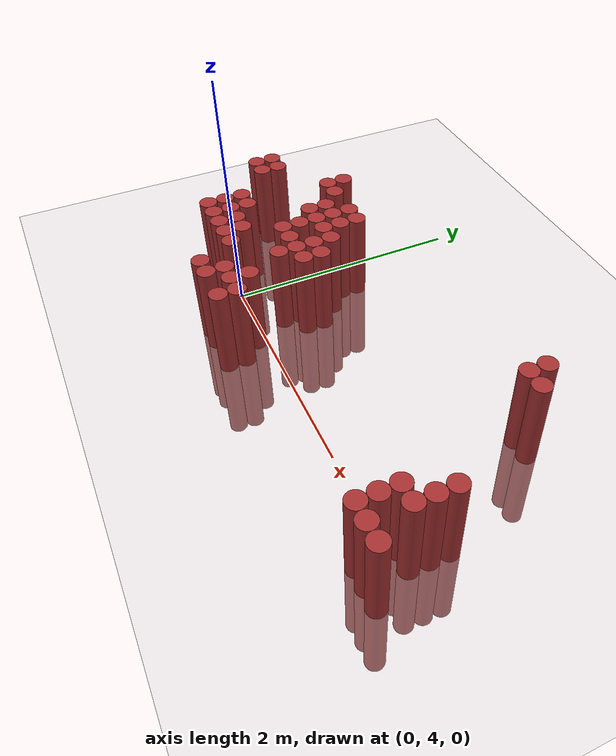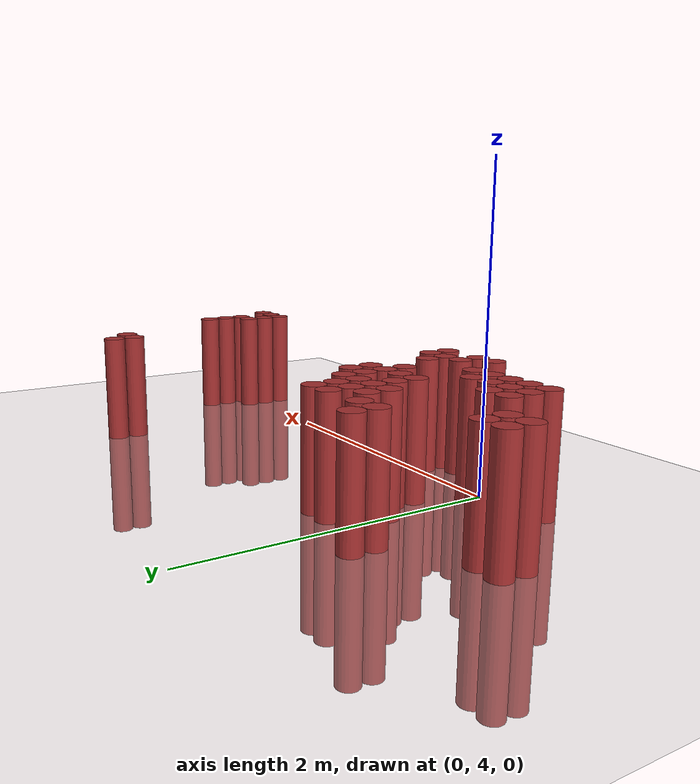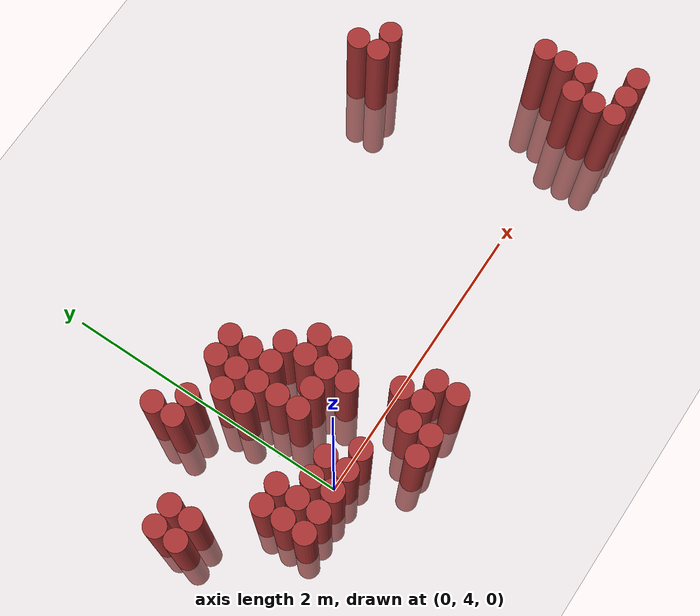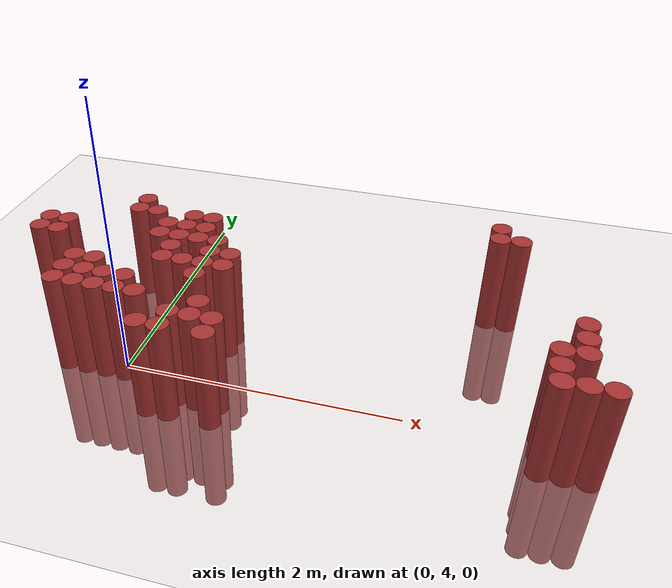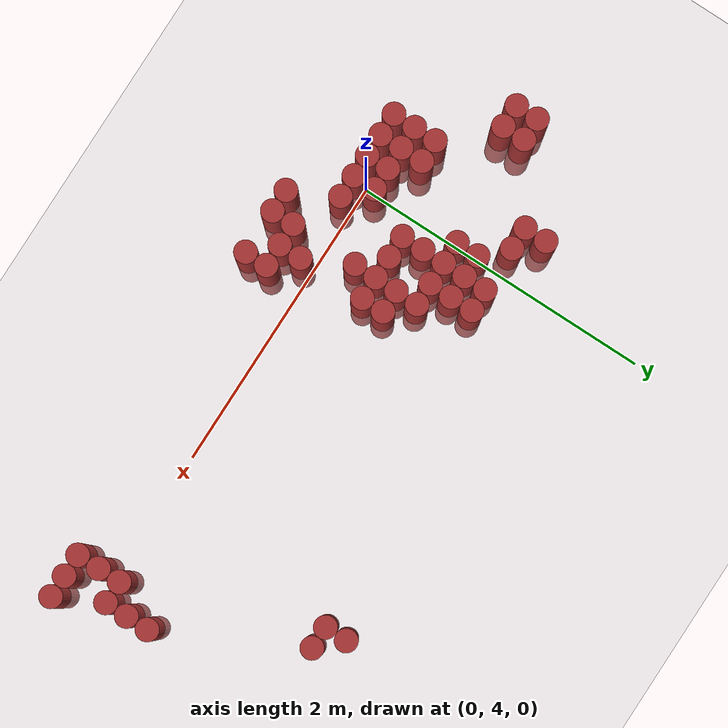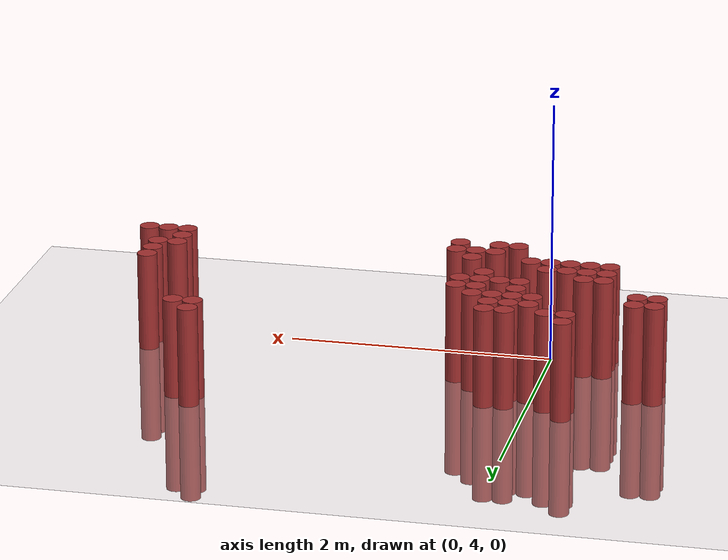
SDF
<sdf version="1.6">
 <world name="default">
  <model name="ground_plane">
   <static>1</static>
   <link name="link">
    <collision name="collision">
     <geometry><plane><normal>0 0 1</normal><size>100 100</size></plane></geometry>
     <surface><friction><ode><mu>100</mu><mu2>50</mu2></ode></friction></surface>
    </collision>
    <visual name="visual">
     <cast_shadows>0</cast_shadows>
     <geometry><plane><normal>0 0 1</normal><size>100 100</size></plane></geometry>
     <material>
      <script><uri>file://media/materials/scripts/gazebo.material</uri><name>Gazebo/Grey</name></script>
     </material>
    </visual>
   </link>
  </model>
  <model name="unit_cylinder_424">
   <static>1</static>
   <pose>-0.875000 4.525000 0.000000 0.000000 0.000000 0.000000</pose>
   <link name="link">
    <inertial>
     <mass>1</mass>
     <inertia><ixx>0.145833</ixx><ixy>0</ixy><ixz>0</ixz><iyy>0.145833</iyy><iyz>0</iyz><izz>0.125</izz></inertia>
    </inertial>
    <collision name="collision">
     <geometry><cylinder><radius>0.075000</radius><length>1.5</length></cylinder></geometry>
    </collision>
    <visual name="visual">
     <geometry><cylinder><radius>0.075000</radius><length>1.5</length></cylinder></geometry>
     <material>
      <ambient>0.648000 0.192000 0.192000 1</ambient>
      <diffuse>0.648000 0.192000 0.192000 1</diffuse>
     </material>
     <material>
      <script><name>Gazebo/Grey</name><uri>file://media/materials/scripts/gazebo.material</uri></script>
     </material>
    </visual>
   </link>
  </model>
  <model name="unit_cylinder_425">
   <static>1</static>
   <pose>-0.875000 4.675000 0.000000 0.000000 0.000000 0.000000</pose>
   <link name="link">
    <inertial>
     <mass>1</mass>
     <inertia><ixx>0.145833</ixx><ixy>0</ixy><ixz>0</ixz><iyy>0.145833</iyy><iyz>0</iyz><izz>0.125</izz></inertia>
    </inertial>
    <collision name="collision">
     <geometry><cylinder><radius>0.075000</radius><length>1.5</length></cylinder></geometry>
    </collision>
    <visual name="visual">
     <geometry><cylinder><radius>0.075000</radius><length>1.5</length></cylinder></geometry>
     <material>
      <ambient>0.648000 0.192000 0.192000 1</ambient>
      <diffuse>0.648000 0.192000 0.192000 1</diffuse>
     </material>
     <material>
      <script><name>Gazebo/Grey</name><uri>file://media/materials/scripts/gazebo.material</uri></script>
     </material>
    </visual>
   </link>
  </model>
  <model name="unit_cylinder_430">
   <static>1</static>
   <pose>-0.725000 4.525000 0.000000 0.000000 0.000000 0.000000</pose>
   <link name="link">
    <inertial>
     <mass>1</mass>
     <inertia><ixx>0.145833</ixx><ixy>0</ixy><ixz>0</ixz><iyy>0.145833</iyy><iyz>0</iyz><izz>0.125</izz></inertia>
    </inertial>
    <collision name="collision">
     <geometry><cylinder><radius>0.075000</radius><length>1.5</length></cylinder></geometry>
    </collision>
    <visual name="visual">
     <geometry><cylinder><radius>0.075000</radius><length>1.5</length></cylinder></geometry>
     <material>
      <ambient>0.648000 0.192000 0.192000 1</ambient>
      <diffuse>0.648000 0.192000 0.192000 1</diffuse>
     </material>
     <material>
      <script><name>Gazebo/Grey</name><uri>file://media/materials/scripts/gazebo.material</uri></script>
     </material>
    </visual>
   </link>
  </model>
  <model name="unit_cylinder_431">
   <static>1</static>
   <pose>-0.725000 4.675000 0.000000 0.000000 0.000000 0.000000</pose>
   <link name="link">
    <inertial>
     <mass>1</mass>
     <inertia><ixx>0.145833</ixx><ixy>0</ixy><ixz>0</ixz><iyy>0.145833</iyy><iyz>0</iyz><izz>0.125</izz></inertia>
    </inertial>
    <collision name="collision">
     <geometry><cylinder><radius>0.075000</radius><length>1.5</length></cylinder></geometry>
    </collision>
    <visual name="visual">
     <geometry><cylinder><radius>0.075000</radius><length>1.5</length></cylinder></geometry>
     <material>
      <ambient>0.648000 0.192000 0.192000 1</ambient>
      <diffuse>0.648000 0.192000 0.192000 1</diffuse>
     </material>
     <material>
      <script><name>Gazebo/Grey</name><uri>file://media/materials/scripts/gazebo.material</uri></script>
     </material>
    </visual>
   </link>
  </model>
  <model name="unit_cylinder_453">
   <static>1</static>
   <pose>-0.425000 3.925000 0.000000 0.000000 0.000000 0.000000</pose>
   <link name="link">
    <inertial>
     <mass>1</mass>
     <inertia><ixx>0.145833</ixx><ixy>0</ixy><ixz>0</ixz><iyy>0.145833</iyy><iyz>0</iyz><izz>0.125</izz></inertia>
    </inertial>
    <collision name="collision">
     <geometry><cylinder><radius>0.075000</radius><length>1.5</length></cylinder></geometry>
    </collision>
    <visual name="visual">
     <geometry><cylinder><radius>0.075000</radius><length>1.5</length></cylinder></geometry>
     <material>
      <ambient>0.648000 0.192000 0.192000 1</ambient>
      <diffuse>0.648000 0.192000 0.192000 1</diffuse>
     </material>
     <material>
      <script><name>Gazebo/Grey</name><uri>file://media/materials/scripts/gazebo.material</uri></script>
     </material>
    </visual>
   </link>
  </model>
  <model name="unit_cylinder_454">
   <static>1</static>
   <pose>-0.425000 4.075000 0.000000 0.000000 0.000000 0.000000</pose>
   <link name="link">
    <inertial>
     <mass>1</mass>
     <inertia><ixx>0.145833</ixx><ixy>0</ixy><ixz>0</ixz><iyy>0.145833</iyy><iyz>0</iyz><izz>0.125</izz></inertia>
    </inertial>
    <collision name="collision">
     <geometry><cylinder><radius>0.075000</radius><length>1.5</length></cylinder></geometry>
    </collision>
    <visual name="visual">
     <geometry><cylinder><radius>0.075000</radius><length>1.5</length></cylinder></geometry>
     <material>
      <ambient>0.648000 0.192000 0.192000 1</ambient>
      <diffuse>0.648000 0.192000 0.192000 1</diffuse>
     </material>
     <material>
      <script><name>Gazebo/Grey</name><uri>file://media/materials/scripts/gazebo.material</uri></script>
     </material>
    </visual>
   </link>
  </model>
  <model name="unit_cylinder_455">
   <static>1</static>
   <pose>-0.425000 4.225000 0.000000 0.000000 0.000000 0.000000</pose>
   <link name="link">
    <inertial>
     <mass>1</mass>
     <inertia><ixx>0.145833</ixx><ixy>0</ixy><ixz>0</ixz><iyy>0.145833</iyy><iyz>0</iyz><izz>0.125</izz></inertia>
    </inertial>
    <collision name="collision">
     <geometry><cylinder><radius>0.075000</radius><length>1.5</length></cylinder></geometry>
    </collision>
    <visual name="visual">
     <geometry><cylinder><radius>0.075000</radius><length>1.5</length></cylinder></geometry>
     <material>
      <ambient>0.648000 0.192000 0.192000 1</ambient>
      <diffuse>0.648000 0.192000 0.192000 1</diffuse>
     </material>
     <material>
      <script><name>Gazebo/Grey</name><uri>file://media/materials/scripts/gazebo.material</uri></script>
     </material>
    </visual>
   </link>
  </model>
  <model name="unit_cylinder_468">
   <static>1</static>
   <pose>-0.275000 3.925000 0.000000 0.000000 0.000000 0.000000</pose>
   <link name="link">
    <inertial>
     <mass>1</mass>
     <inertia><ixx>0.145833</ixx><ixy>0</ixy><ixz>0</ixz><iyy>0.145833</iyy><iyz>0</iyz><izz>0.125</izz></inertia>
    </inertial>
    <collision name="collision">
     <geometry><cylinder><radius>0.075000</radius><length>1.5</length></cylinder></geometry>
    </collision>
    <visual name="visual">
     <geometry><cylinder><radius>0.075000</radius><length>1.5</length></cylinder></geometry>
     <material>
      <ambient>0.648000 0.192000 0.192000 1</ambient>
      <diffuse>0.648000 0.192000 0.192000 1</diffuse>
     </material>
     <material>
      <script><name>Gazebo/Grey</name><uri>file://media/materials/scripts/gazebo.material</uri></script>
     </material>
    </visual>
   </link>
  </model>
  <model name="unit_cylinder_469">
   <static>1</static>
   <pose>-0.275000 4.075000 0.000000 0.000000 0.000000 0.000000</pose>
   <link name="link">
    <inertial>
     <mass>1</mass>
     <inertia><ixx>0.145833</ixx><ixy>0</ixy><ixz>0</ixz><iyy>0.145833</iyy><iyz>0</iyz><izz>0.125</izz></inertia>
    </inertial>
    <collision name="collision">
     <geometry><cylinder><radius>0.075000</radius><length>1.5</length></cylinder></geometry>
    </collision>
    <visual name="visual">
     <geometry><cylinder><radius>0.075000</radius><length>1.5</length></cylinder></geometry>
     <material>
      <ambient>0.648000 0.192000 0.192000 1</ambient>
      <diffuse>0.648000 0.192000 0.192000 1</diffuse>
     </material>
     <material>
      <script><name>Gazebo/Grey</name><uri>file://media/materials/scripts/gazebo.material</uri></script>
     </material>
    </visual>
   </link>
  </model>
  <model name="unit_cylinder_470">
   <static>1</static>
   <pose>-0.275000 4.225000 0.000000 0.000000 0.000000 0.000000</pose>
   <link name="link">
    <inertial>
     <mass>1</mass>
     <inertia><ixx>0.145833</ixx><ixy>0</ixy><ixz>0</ixz><iyy>0.145833</iyy><iyz>0</iyz><izz>0.125</izz></inertia>
    </inertial>
    <collision name="collision">
     <geometry><cylinder><radius>0.075000</radius><length>1.5</length></cylinder></geometry>
    </collision>
    <visual name="visual">
     <geometry><cylinder><radius>0.075000</radius><length>1.5</length></cylinder></geometry>
     <material>
      <ambient>0.648000 0.192000 0.192000 1</ambient>
      <diffuse>0.648000 0.192000 0.192000 1</diffuse>
     </material>
     <material>
      <script><name>Gazebo/Grey</name><uri>file://media/materials/scripts/gazebo.material</uri></script>
     </material>
    </visual>
   </link>
  </model>
  <model name="unit_cylinder_471">
   <static>1</static>
   <pose>-0.275000 4.975000 0.000000 0.000000 0.000000 0.000000</pose>
   <link name="link">
    <inertial>
     <mass>1</mass>
     <inertia><ixx>0.145833</ixx><ixy>0</ixy><ixz>0</ixz><iyy>0.145833</iyy><iyz>0</iyz><izz>0.125</izz></inertia>
    </inertial>
    <collision name="collision">
     <geometry><cylinder><radius>0.075000</radius><length>1.5</length></cylinder></geometry>
    </collision>
    <visual name="visual">
     <geometry><cylinder><radius>0.075000</radius><length>1.5</length></cylinder></geometry>
     <material>
      <ambient>0.648000 0.192000 0.192000 1</ambient>
      <diffuse>0.648000 0.192000 0.192000 1</diffuse>
     </material>
     <material>
      <script><name>Gazebo/Grey</name><uri>file://media/materials/scripts/gazebo.material</uri></script>
     </material>
    </visual>
   </link>
  </model>
  <model name="unit_cylinder_472">
   <static>1</static>
   <pose>-0.275000 5.125000 0.000000 0.000000 0.000000 0.000000</pose>
   <link name="link">
    <inertial>
     <mass>1</mass>
     <inertia><ixx>0.145833</ixx><ixy>0</ixy><ixz>0</ixz><iyy>0.145833</iyy><iyz>0</iyz><izz>0.125</izz></inertia>
    </inertial>
    <collision name="collision">
     <geometry><cylinder><radius>0.075000</radius><length>1.5</length></cylinder></geometry>
    </collision>
    <visual name="visual">
     <geometry><cylinder><radius>0.075000</radius><length>1.5</length></cylinder></geometry>
     <material>
      <ambient>0.648000 0.192000 0.192000 1</ambient>
      <diffuse>0.648000 0.192000 0.192000 1</diffuse>
     </material>
     <material>
      <script><name>Gazebo/Grey</name><uri>file://media/materials/scripts/gazebo.material</uri></script>
     </material>
    </visual>
   </link>
  </model>
  <model name="unit_cylinder_479">
   <static>1</static>
   <pose>-0.125000 3.925000 0.000000 0.000000 0.000000 0.000000</pose>
   <link name="link">
    <inertial>
     <mass>1</mass>
     <inertia><ixx>0.145833</ixx><ixy>0</ixy><ixz>0</ixz><iyy>0.145833</iyy><iyz>0</iyz><izz>0.125</izz></inertia>
    </inertial>
    <collision name="collision">
     <geometry><cylinder><radius>0.075000</radius><length>1.5</length></cylinder></geometry>
    </collision>
    <visual name="visual">
     <geometry><cylinder><radius>0.075000</radius><length>1.5</length></cylinder></geometry>
     <material>
      <ambient>0.648000 0.192000 0.192000 1</ambient>
      <diffuse>0.648000 0.192000 0.192000 1</diffuse>
     </material>
     <material>
      <script><name>Gazebo/Grey</name><uri>file://media/materials/scripts/gazebo.material</uri></script>
     </material>
    </visual>
   </link>
  </model>
  <model name="unit_cylinder_480">
   <static>1</static>
   <pose>-0.125000 4.075000 0.000000 0.000000 0.000000 0.000000</pose>
   <link name="link">
    <inertial>
     <mass>1</mass>
     <inertia><ixx>0.145833</ixx><ixy>0</ixy><ixz>0</ixz><iyy>0.145833</iyy><iyz>0</iyz><izz>0.125</izz></inertia>
    </inertial>
    <collision name="collision">
     <geometry><cylinder><radius>0.075000</radius><length>1.5</length></cylinder></geometry>
    </collision>
    <visual name="visual">
     <geometry><cylinder><radius>0.075000</radius><length>1.5</length></cylinder></geometry>
     <material>
      <ambient>0.648000 0.192000 0.192000 1</ambient>
      <diffuse>0.648000 0.192000 0.192000 1</diffuse>
     </material>
     <material>
      <script><name>Gazebo/Grey</name><uri>file://media/materials/scripts/gazebo.material</uri></script>
     </material>
    </visual>
   </link>
  </model>
  <model name="unit_cylinder_481">
   <static>1</static>
   <pose>-0.125000 4.975000 0.000000 0.000000 0.000000 0.000000</pose>
   <link name="link">
    <inertial>
     <mass>1</mass>
     <inertia><ixx>0.145833</ixx><ixy>0</ixy><ixz>0</ixz><iyy>0.145833</iyy><iyz>0</iyz><izz>0.125</izz></inertia>
    </inertial>
    <collision name="collision">
     <geometry><cylinder><radius>0.075000</radius><length>1.5</length></cylinder></geometry>
    </collision>
    <visual name="visual">
     <geometry><cylinder><radius>0.075000</radius><length>1.5</length></cylinder></geometry>
     <material>
      <ambient>0.648000 0.192000 0.192000 1</ambient>
      <diffuse>0.648000 0.192000 0.192000 1</diffuse>
     </material>
     <material>
      <script><name>Gazebo/Grey</name><uri>file://media/materials/scripts/gazebo.material</uri></script>
     </material>
    </visual>
   </link>
  </model>
  <model name="unit_cylinder_488">
   <static>1</static>
   <pose>0.025000 3.925000 0.000000 0.000000 0.000000 0.000000</pose>
   <link name="link">
    <inertial>
     <mass>1</mass>
     <inertia><ixx>0.145833</ixx><ixy>0</ixy><ixz>0</ixz><iyy>0.145833</iyy><iyz>0</iyz><izz>0.125</izz></inertia>
    </inertial>
    <collision name="collision">
     <geometry><cylinder><radius>0.075000</radius><length>1.5</length></cylinder></geometry>
    </collision>
    <visual name="visual">
     <geometry><cylinder><radius>0.075000</radius><length>1.5</length></cylinder></geometry>
     <material>
      <ambient>0.648000 0.192000 0.192000 1</ambient>
      <diffuse>0.648000 0.192000 0.192000 1</diffuse>
     </material>
     <material>
      <script><name>Gazebo/Grey</name><uri>file://media/materials/scripts/gazebo.material</uri></script>
     </material>
    </visual>
   </link>
  </model>
  <model name="unit_cylinder_489">
   <static>1</static>
   <pose>0.025000 4.075000 0.000000 0.000000 0.000000 0.000000</pose>
   <link name="link">
    <inertial>
     <mass>1</mass>
     <inertia><ixx>0.145833</ixx><ixy>0</ixy><ixz>0</ixz><iyy>0.145833</iyy><iyz>0</iyz><izz>0.125</izz></inertia>
    </inertial>
    <collision name="collision">
     <geometry><cylinder><radius>0.075000</radius><length>1.5</length></cylinder></geometry>
    </collision>
    <visual name="visual">
     <geometry><cylinder><radius>0.075000</radius><length>1.5</length></cylinder></geometry>
     <material>
      <ambient>0.648000 0.192000 0.192000 1</ambient>
      <diffuse>0.648000 0.192000 0.192000 1</diffuse>
     </material>
     <material>
      <script><name>Gazebo/Grey</name><uri>file://media/materials/scripts/gazebo.material</uri></script>
     </material>
    </visual>
   </link>
  </model>
  <model name="unit_cylinder_490">
   <static>1</static>
   <pose>0.025000 4.675000 0.000000 0.000000 0.000000 0.000000</pose>
   <link name="link">
    <inertial>
     <mass>1</mass>
     <inertia><ixx>0.145833</ixx><ixy>0</ixy><ixz>0</ixz><iyy>0.145833</iyy><iyz>0</iyz><izz>0.125</izz></inertia>
    </inertial>
    <collision name="collision">
     <geometry><cylinder><radius>0.075000</radius><length>1.5</length></cylinder></geometry>
    </collision>
    <visual name="visual">
     <geometry><cylinder><radius>0.075000</radius><length>1.5</length></cylinder></geometry>
     <material>
      <ambient>0.648000 0.192000 0.192000 1</ambient>
      <diffuse>0.648000 0.192000 0.192000 1</diffuse>
     </material>
     <material>
      <script><name>Gazebo/Grey</name><uri>file://media/materials/scripts/gazebo.material</uri></script>
     </material>
    </visual>
   </link>
  </model>
  <model name="unit_cylinder_491">
   <static>1</static>
   <pose>0.025000 4.825000 0.000000 0.000000 0.000000 0.000000</pose>
   <link name="link">
    <inertial>
     <mass>1</mass>
     <inertia><ixx>0.145833</ixx><ixy>0</ixy><ixz>0</ixz><iyy>0.145833</iyy><iyz>0</iyz><izz>0.125</izz></inertia>
    </inertial>
    <collision name="collision">
     <geometry><cylinder><radius>0.075000</radius><length>1.5</length></cylinder></geometry>
    </collision>
    <visual name="visual">
     <geometry><cylinder><radius>0.075000</radius><length>1.5</length></cylinder></geometry>
     <material>
      <ambient>0.648000 0.192000 0.192000 1</ambient>
      <diffuse>0.648000 0.192000 0.192000 1</diffuse>
     </material>
     <material>
      <script><name>Gazebo/Grey</name><uri>file://media/materials/scripts/gazebo.material</uri></script>
     </material>
    </visual>
   </link>
  </model>
  <model name="unit_cylinder_496">
   <static>1</static>
   <pose>0.175000 3.925000 0.000000 0.000000 0.000000 0.000000</pose>
   <link name="link">
    <inertial>
     <mass>1</mass>
     <inertia><ixx>0.145833</ixx><ixy>0</ixy><ixz>0</ixz><iyy>0.145833</iyy><iyz>0</iyz><izz>0.125</izz></inertia>
    </inertial>
    <collision name="collision">
     <geometry><cylinder><radius>0.075000</radius><length>1.5</length></cylinder></geometry>
    </collision>
    <visual name="visual">
     <geometry><cylinder><radius>0.075000</radius><length>1.5</length></cylinder></geometry>
     <material>
      <ambient>0.648000 0.192000 0.192000 1</ambient>
      <diffuse>0.648000 0.192000 0.192000 1</diffuse>
     </material>
     <material>
      <script><name>Gazebo/Grey</name><uri>file://media/materials/scripts/gazebo.material</uri></script>
     </material>
    </visual>
   </link>
  </model>
  <model name="unit_cylinder_497">
   <static>1</static>
   <pose>0.175000 4.375000 0.000000 0.000000 0.000000 0.000000</pose>
   <link name="link">
    <inertial>
     <mass>1</mass>
     <inertia><ixx>0.145833</ixx><ixy>0</ixy><ixz>0</ixz><iyy>0.145833</iyy><iyz>0</iyz><izz>0.125</izz></inertia>
    </inertial>
    <collision name="collision">
     <geometry><cylinder><radius>0.075000</radius><length>1.5</length></cylinder></geometry>
    </collision>
    <visual name="visual">
     <geometry><cylinder><radius>0.075000</radius><length>1.5</length></cylinder></geometry>
     <material>
      <ambient>0.648000 0.192000 0.192000 1</ambient>
      <diffuse>0.648000 0.192000 0.192000 1</diffuse>
     </material>
     <material>
      <script><name>Gazebo/Grey</name><uri>file://media/materials/scripts/gazebo.material</uri></script>
     </material>
    </visual>
   </link>
  </model>
  <model name="unit_cylinder_498">
   <static>1</static>
   <pose>0.175000 4.525000 0.000000 0.000000 0.000000 0.000000</pose>
   <link name="link">
    <inertial>
     <mass>1</mass>
     <inertia><ixx>0.145833</ixx><ixy>0</ixy><ixz>0</ixz><iyy>0.145833</iyy><iyz>0</iyz><izz>0.125</izz></inertia>
    </inertial>
    <collision name="collision">
     <geometry><cylinder><radius>0.075000</radius><length>1.5</length></cylinder></geometry>
    </collision>
    <visual name="visual">
     <geometry><cylinder><radius>0.075000</radius><length>1.5</length></cylinder></geometry>
     <material>
      <ambient>0.648000 0.192000 0.192000 1</ambient>
      <diffuse>0.648000 0.192000 0.192000 1</diffuse>
     </material>
     <material>
      <script><name>Gazebo/Grey</name><uri>file://media/materials/scripts/gazebo.material</uri></script>
     </material>
    </visual>
   </link>
  </model>
  <model name="unit_cylinder_499">
   <static>1</static>
   <pose>0.175000 4.675000 0.000000 0.000000 0.000000 0.000000</pose>
   <link name="link">
    <inertial>
     <mass>1</mass>
     <inertia><ixx>0.145833</ixx><ixy>0</ixy><ixz>0</ixz><iyy>0.145833</iyy><iyz>0</iyz><izz>0.125</izz></inertia>
    </inertial>
    <collision name="collision">
     <geometry><cylinder><radius>0.075000</radius><length>1.5</length></cylinder></geometry>
    </collision>
    <visual name="visual">
     <geometry><cylinder><radius>0.075000</radius><length>1.5</length></cylinder></geometry>
     <material>
      <ambient>0.648000 0.192000 0.192000 1</ambient>
      <diffuse>0.648000 0.192000 0.192000 1</diffuse>
     </material>
     <material>
      <script><name>Gazebo/Grey</name><uri>file://media/materials/scripts/gazebo.material</uri></script>
     </material>
    </visual>
   </link>
  </model>
  <model name="unit_cylinder_500">
   <static>1</static>
   <pose>0.175000 4.825000 0.000000 0.000000 0.000000 0.000000</pose>
   <link name="link">
    <inertial>
     <mass>1</mass>
     <inertia><ixx>0.145833</ixx><ixy>0</ixy><ixz>0</ixz><iyy>0.145833</iyy><iyz>0</iyz><izz>0.125</izz></inertia>
    </inertial>
    <collision name="collision">
     <geometry><cylinder><radius>0.075000</radius><length>1.5</length></cylinder></geometry>
    </collision>
    <visual name="visual">
     <geometry><cylinder><radius>0.075000</radius><length>1.5</length></cylinder></geometry>
     <material>
      <ambient>0.648000 0.192000 0.192000 1</ambient>
      <diffuse>0.648000 0.192000 0.192000 1</diffuse>
     </material>
     <material>
      <script><name>Gazebo/Grey</name><uri>file://media/materials/scripts/gazebo.material</uri></script>
     </material>
    </visual>
   </link>
  </model>
  <model name="unit_cylinder_501">
   <static>1</static>
   <pose>0.175000 4.975000 0.000000 0.000000 0.000000 0.000000</pose>
   <link name="link">
    <inertial>
     <mass>1</mass>
     <inertia><ixx>0.145833</ixx><ixy>0</ixy><ixz>0</ixz><iyy>0.145833</iyy><iyz>0</iyz><izz>0.125</izz></inertia>
    </inertial>
    <collision name="collision">
     <geometry><cylinder><radius>0.075000</radius><length>1.5</length></cylinder></geometry>
    </collision>
    <visual name="visual">
     <geometry><cylinder><radius>0.075000</radius><length>1.5</length></cylinder></geometry>
     <material>
      <ambient>0.648000 0.192000 0.192000 1</ambient>
      <diffuse>0.648000 0.192000 0.192000 1</diffuse>
     </material>
     <material>
      <script><name>Gazebo/Grey</name><uri>file://media/materials/scripts/gazebo.material</uri></script>
     </material>
    </visual>
   </link>
  </model>
  <model name="unit_cylinder_506">
   <static>1</static>
   <pose>0.325000 3.625000 0.000000 0.000000 0.000000 0.000000</pose>
   <link name="link">
    <inertial>
     <mass>1</mass>
     <inertia><ixx>0.145833</ixx><ixy>0</ixy><ixz>0</ixz><iyy>0.145833</iyy><iyz>0</iyz><izz>0.125</izz></inertia>
    </inertial>
    <collision name="collision">
     <geometry><cylinder><radius>0.075000</radius><length>1.5</length></cylinder></geometry>
    </collision>
    <visual name="visual">
     <geometry><cylinder><radius>0.075000</radius><length>1.5</length></cylinder></geometry>
     <material>
      <ambient>0.648000 0.192000 0.192000 1</ambient>
      <diffuse>0.648000 0.192000 0.192000 1</diffuse>
     </material>
     <material>
      <script><name>Gazebo/Grey</name><uri>file://media/materials/scripts/gazebo.material</uri></script>
     </material>
    </visual>
   </link>
  </model>
  <model name="unit_cylinder_507">
   <static>1</static>
   <pose>0.325000 4.375000 0.000000 0.000000 0.000000 0.000000</pose>
   <link name="link">
    <inertial>
     <mass>1</mass>
     <inertia><ixx>0.145833</ixx><ixy>0</ixy><ixz>0</ixz><iyy>0.145833</iyy><iyz>0</iyz><izz>0.125</izz></inertia>
    </inertial>
    <collision name="collision">
     <geometry><cylinder><radius>0.075000</radius><length>1.5</length></cylinder></geometry>
    </collision>
    <visual name="visual">
     <geometry><cylinder><radius>0.075000</radius><length>1.5</length></cylinder></geometry>
     <material>
      <ambient>0.648000 0.192000 0.192000 1</ambient>
      <diffuse>0.648000 0.192000 0.192000 1</diffuse>
     </material>
     <material>
      <script><name>Gazebo/Grey</name><uri>file://media/materials/scripts/gazebo.material</uri></script>
     </material>
    </visual>
   </link>
  </model>
  <model name="unit_cylinder_508">
   <static>1</static>
   <pose>0.325000 4.675000 0.000000 0.000000 0.000000 0.000000</pose>
   <link name="link">
    <inertial>
     <mass>1</mass>
     <inertia><ixx>0.145833</ixx><ixy>0</ixy><ixz>0</ixz><iyy>0.145833</iyy><iyz>0</iyz><izz>0.125</izz></inertia>
    </inertial>
    <collision name="collision">
     <geometry><cylinder><radius>0.075000</radius><length>1.5</length></cylinder></geometry>
    </collision>
    <visual name="visual">
     <geometry><cylinder><radius>0.075000</radius><length>1.5</length></cylinder></geometry>
     <material>
      <ambient>0.648000 0.192000 0.192000 1</ambient>
      <diffuse>0.648000 0.192000 0.192000 1</diffuse>
     </material>
     <material>
      <script><name>Gazebo/Grey</name><uri>file://media/materials/scripts/gazebo.material</uri></script>
     </material>
    </visual>
   </link>
  </model>
  <model name="unit_cylinder_509">
   <static>1</static>
   <pose>0.325000 4.825000 0.000000 0.000000 0.000000 0.000000</pose>
   <link name="link">
    <inertial>
     <mass>1</mass>
     <inertia><ixx>0.145833</ixx><ixy>0</ixy><ixz>0</ixz><iyy>0.145833</iyy><iyz>0</iyz><izz>0.125</izz></inertia>
    </inertial>
    <collision name="collision">
     <geometry><cylinder><radius>0.075000</radius><length>1.5</length></cylinder></geometry>
    </collision>
    <visual name="visual">
     <geometry><cylinder><radius>0.075000</radius><length>1.5</length></cylinder></geometry>
     <material>
      <ambient>0.648000 0.192000 0.192000 1</ambient>
      <diffuse>0.648000 0.192000 0.192000 1</diffuse>
     </material>
     <material>
      <script><name>Gazebo/Grey</name><uri>file://media/materials/scripts/gazebo.material</uri></script>
     </material>
    </visual>
   </link>
  </model>
  <model name="unit_cylinder_510">
   <static>1</static>
   <pose>0.325000 4.975000 0.000000 0.000000 0.000000 0.000000</pose>
   <link name="link">
    <inertial>
     <mass>1</mass>
     <inertia><ixx>0.145833</ixx><ixy>0</ixy><ixz>0</ixz><iyy>0.145833</iyy><iyz>0</iyz><izz>0.125</izz></inertia>
    </inertial>
    <collision name="collision">
     <geometry><cylinder><radius>0.075000</radius><length>1.5</length></cylinder></geometry>
    </collision>
    <visual name="visual">
     <geometry><cylinder><radius>0.075000</radius><length>1.5</length></cylinder></geometry>
     <material>
      <ambient>0.648000 0.192000 0.192000 1</ambient>
      <diffuse>0.648000 0.192000 0.192000 1</diffuse>
     </material>
     <material>
      <script><name>Gazebo/Grey</name><uri>file://media/materials/scripts/gazebo.material</uri></script>
     </material>
    </visual>
   </link>
  </model>
  <model name="unit_cylinder_517">
   <static>1</static>
   <pose>0.475000 3.625000 0.000000 0.000000 0.000000 0.000000</pose>
   <link name="link">
    <inertial>
     <mass>1</mass>
     <inertia><ixx>0.145833</ixx><ixy>0</ixy><ixz>0</ixz><iyy>0.145833</iyy><iyz>0</iyz><izz>0.125</izz></inertia>
    </inertial>
    <collision name="collision">
     <geometry><cylinder><radius>0.075000</radius><length>1.5</length></cylinder></geometry>
    </collision>
    <visual name="visual">
     <geometry><cylinder><radius>0.075000</radius><length>1.5</length></cylinder></geometry>
     <material>
      <ambient>0.648000 0.192000 0.192000 1</ambient>
      <diffuse>0.648000 0.192000 0.192000 1</diffuse>
     </material>
     <material>
      <script><name>Gazebo/Grey</name><uri>file://media/materials/scripts/gazebo.material</uri></script>
     </material>
    </visual>
   </link>
  </model>
  <model name="unit_cylinder_518">
   <static>1</static>
   <pose>0.475000 3.775000 0.000000 0.000000 0.000000 0.000000</pose>
   <link name="link">
    <inertial>
     <mass>1</mass>
     <inertia><ixx>0.145833</ixx><ixy>0</ixy><ixz>0</ixz><iyy>0.145833</iyy><iyz>0</iyz><izz>0.125</izz></inertia>
    </inertial>
    <collision name="collision">
     <geometry><cylinder><radius>0.075000</radius><length>1.5</length></cylinder></geometry>
    </collision>
    <visual name="visual">
     <geometry><cylinder><radius>0.075000</radius><length>1.5</length></cylinder></geometry>
     <material>
      <ambient>0.648000 0.192000 0.192000 1</ambient>
      <diffuse>0.648000 0.192000 0.192000 1</diffuse>
     </material>
     <material>
      <script><name>Gazebo/Grey</name><uri>file://media/materials/scripts/gazebo.material</uri></script>
     </material>
    </visual>
   </link>
  </model>
  <model name="unit_cylinder_519">
   <static>1</static>
   <pose>0.475000 4.225000 0.000000 0.000000 0.000000 0.000000</pose>
   <link name="link">
    <inertial>
     <mass>1</mass>
     <inertia><ixx>0.145833</ixx><ixy>0</ixy><ixz>0</ixz><iyy>0.145833</iyy><iyz>0</iyz><izz>0.125</izz></inertia>
    </inertial>
    <collision name="collision">
     <geometry><cylinder><radius>0.075000</radius><length>1.5</length></cylinder></geometry>
    </collision>
    <visual name="visual">
     <geometry><cylinder><radius>0.075000</radius><length>1.5</length></cylinder></geometry>
     <material>
      <ambient>0.648000 0.192000 0.192000 1</ambient>
      <diffuse>0.648000 0.192000 0.192000 1</diffuse>
     </material>
     <material>
      <script><name>Gazebo/Grey</name><uri>file://media/materials/scripts/gazebo.material</uri></script>
     </material>
    </visual>
   </link>
  </model>
  <model name="unit_cylinder_520">
   <static>1</static>
   <pose>0.475000 4.375000 0.000000 0.000000 0.000000 0.000000</pose>
   <link name="link">
    <inertial>
     <mass>1</mass>
     <inertia><ixx>0.145833</ixx><ixy>0</ixy><ixz>0</ixz><iyy>0.145833</iyy><iyz>0</iyz><izz>0.125</izz></inertia>
    </inertial>
    <collision name="collision">
     <geometry><cylinder><radius>0.075000</radius><length>1.5</length></cylinder></geometry>
    </collision>
    <visual name="visual">
     <geometry><cylinder><radius>0.075000</radius><length>1.5</length></cylinder></geometry>
     <material>
      <ambient>0.648000 0.192000 0.192000 1</ambient>
      <diffuse>0.648000 0.192000 0.192000 1</diffuse>
     </material>
     <material>
      <script><name>Gazebo/Grey</name><uri>file://media/materials/scripts/gazebo.material</uri></script>
     </material>
    </visual>
   </link>
  </model>
  <model name="unit_cylinder_521">
   <static>1</static>
   <pose>0.475000 4.525000 0.000000 0.000000 0.000000 0.000000</pose>
   <link name="link">
    <inertial>
     <mass>1</mass>
     <inertia><ixx>0.145833</ixx><ixy>0</ixy><ixz>0</ixz><iyy>0.145833</iyy><iyz>0</iyz><izz>0.125</izz></inertia>
    </inertial>
    <collision name="collision">
     <geometry><cylinder><radius>0.075000</radius><length>1.5</length></cylinder></geometry>
    </collision>
    <visual name="visual">
     <geometry><cylinder><radius>0.075000</radius><length>1.5</length></cylinder></geometry>
     <material>
      <ambient>0.648000 0.192000 0.192000 1</ambient>
      <diffuse>0.648000 0.192000 0.192000 1</diffuse>
     </material>
     <material>
      <script><name>Gazebo/Grey</name><uri>file://media/materials/scripts/gazebo.material</uri></script>
     </material>
    </visual>
   </link>
  </model>
  <model name="unit_cylinder_522">
   <static>1</static>
   <pose>0.475000 4.675000 0.000000 0.000000 0.000000 0.000000</pose>
   <link name="link">
    <inertial>
     <mass>1</mass>
     <inertia><ixx>0.145833</ixx><ixy>0</ixy><ixz>0</ixz><iyy>0.145833</iyy><iyz>0</iyz><izz>0.125</izz></inertia>
    </inertial>
    <collision name="collision">
     <geometry><cylinder><radius>0.075000</radius><length>1.5</length></cylinder></geometry>
    </collision>
    <visual name="visual">
     <geometry><cylinder><radius>0.075000</radius><length>1.5</length></cylinder></geometry>
     <material>
      <ambient>0.648000 0.192000 0.192000 1</ambient>
      <diffuse>0.648000 0.192000 0.192000 1</diffuse>
     </material>
     <material>
      <script><name>Gazebo/Grey</name><uri>file://media/materials/scripts/gazebo.material</uri></script>
     </material>
    </visual>
   </link>
  </model>
  <model name="unit_cylinder_527">
   <static>1</static>
   <pose>0.625000 3.775000 0.000000 0.000000 0.000000 0.000000</pose>
   <link name="link">
    <inertial>
     <mass>1</mass>
     <inertia><ixx>0.145833</ixx><ixy>0</ixy><ixz>0</ixz><iyy>0.145833</iyy><iyz>0</iyz><izz>0.125</izz></inertia>
    </inertial>
    <collision name="collision">
     <geometry><cylinder><radius>0.075000</radius><length>1.5</length></cylinder></geometry>
    </collision>
    <visual name="visual">
     <geometry><cylinder><radius>0.075000</radius><length>1.5</length></cylinder></geometry>
     <material>
      <ambient>0.648000 0.192000 0.192000 1</ambient>
      <diffuse>0.648000 0.192000 0.192000 1</diffuse>
     </material>
     <material>
      <script><name>Gazebo/Grey</name><uri>file://media/materials/scripts/gazebo.material</uri></script>
     </material>
    </visual>
   </link>
  </model>
  <model name="unit_cylinder_528">
   <static>1</static>
   <pose>0.625000 3.925000 0.000000 0.000000 0.000000 0.000000</pose>
   <link name="link">
    <inertial>
     <mass>1</mass>
     <inertia><ixx>0.145833</ixx><ixy>0</ixy><ixz>0</ixz><iyy>0.145833</iyy><iyz>0</iyz><izz>0.125</izz></inertia>
    </inertial>
    <collision name="collision">
     <geometry><cylinder><radius>0.075000</radius><length>1.5</length></cylinder></geometry>
    </collision>
    <visual name="visual">
     <geometry><cylinder><radius>0.075000</radius><length>1.5</length></cylinder></geometry>
     <material>
      <ambient>0.648000 0.192000 0.192000 1</ambient>
      <diffuse>0.648000 0.192000 0.192000 1</diffuse>
     </material>
     <material>
      <script><name>Gazebo/Grey</name><uri>file://media/materials/scripts/gazebo.material</uri></script>
     </material>
    </visual>
   </link>
  </model>
  <model name="unit_cylinder_529">
   <static>1</static>
   <pose>0.625000 4.375000 0.000000 0.000000 0.000000 0.000000</pose>
   <link name="link">
    <inertial>
     <mass>1</mass>
     <inertia><ixx>0.145833</ixx><ixy>0</ixy><ixz>0</ixz><iyy>0.145833</iyy><iyz>0</iyz><izz>0.125</izz></inertia>
    </inertial>
    <collision name="collision">
     <geometry><cylinder><radius>0.075000</radius><length>1.5</length></cylinder></geometry>
    </collision>
    <visual name="visual">
     <geometry><cylinder><radius>0.075000</radius><length>1.5</length></cylinder></geometry>
     <material>
      <ambient>0.648000 0.192000 0.192000 1</ambient>
      <diffuse>0.648000 0.192000 0.192000 1</diffuse>
     </material>
     <material>
      <script><name>Gazebo/Grey</name><uri>file://media/materials/scripts/gazebo.material</uri></script>
     </material>
    </visual>
   </link>
  </model>
  <model name="unit_cylinder_530">
   <static>1</static>
   <pose>0.625000 4.525000 0.000000 0.000000 0.000000 0.000000</pose>
   <link name="link">
    <inertial>
     <mass>1</mass>
     <inertia><ixx>0.145833</ixx><ixy>0</ixy><ixz>0</ixz><iyy>0.145833</iyy><iyz>0</iyz><izz>0.125</izz></inertia>
    </inertial>
    <collision name="collision">
     <geometry><cylinder><radius>0.075000</radius><length>1.5</length></cylinder></geometry>
    </collision>
    <visual name="visual">
     <geometry><cylinder><radius>0.075000</radius><length>1.5</length></cylinder></geometry>
     <material>
      <ambient>0.648000 0.192000 0.192000 1</ambient>
      <diffuse>0.648000 0.192000 0.192000 1</diffuse>
     </material>
     <material>
      <script><name>Gazebo/Grey</name><uri>file://media/materials/scripts/gazebo.material</uri></script>
     </material>
    </visual>
   </link>
  </model>
  <model name="unit_cylinder_534">
   <static>1</static>
   <pose>0.775000 3.625000 0.000000 0.000000 0.000000 0.000000</pose>
   <link name="link">
    <inertial>
     <mass>1</mass>
     <inertia><ixx>0.145833</ixx><ixy>0</ixy><ixz>0</ixz><iyy>0.145833</iyy><iyz>0</iyz><izz>0.125</izz></inertia>
    </inertial>
    <collision name="collision">
     <geometry><cylinder><radius>0.075000</radius><length>1.5</length></cylinder></geometry>
    </collision>
    <visual name="visual">
     <geometry><cylinder><radius>0.075000</radius><length>1.5</length></cylinder></geometry>
     <material>
      <ambient>0.648000 0.192000 0.192000 1</ambient>
      <diffuse>0.648000 0.192000 0.192000 1</diffuse>
     </material>
     <material>
      <script><name>Gazebo/Grey</name><uri>file://media/materials/scripts/gazebo.material</uri></script>
     </material>
    </visual>
   </link>
  </model>
  <model name="unit_cylinder_535">
   <static>1</static>
   <pose>0.775000 3.775000 0.000000 0.000000 0.000000 0.000000</pose>
   <link name="link">
    <inertial>
     <mass>1</mass>
     <inertia><ixx>0.145833</ixx><ixy>0</ixy><ixz>0</ixz><iyy>0.145833</iyy><iyz>0</iyz><izz>0.125</izz></inertia>
    </inertial>
    <collision name="collision">
     <geometry><cylinder><radius>0.075000</radius><length>1.5</length></cylinder></geometry>
    </collision>
    <visual name="visual">
     <geometry><cylinder><radius>0.075000</radius><length>1.5</length></cylinder></geometry>
     <material>
      <ambient>0.648000 0.192000 0.192000 1</ambient>
      <diffuse>0.648000 0.192000 0.192000 1</diffuse>
     </material>
     <material>
      <script><name>Gazebo/Grey</name><uri>file://media/materials/scripts/gazebo.material</uri></script>
     </material>
    </visual>
   </link>
  </model>
  <model name="unit_cylinder_570">
   <static>1</static>
   <pose>2.425000 5.275000 0.000000 0.000000 0.000000 0.000000</pose>
   <link name="link">
    <inertial>
     <mass>1</mass>
     <inertia><ixx>0.145833</ixx><ixy>0</ixy><ixz>0</ixz><iyy>0.145833</iyy><iyz>0</iyz><izz>0.125</izz></inertia>
    </inertial>
    <collision name="collision">
     <geometry><cylinder><radius>0.075000</radius><length>1.5</length></cylinder></geometry>
    </collision>
    <visual name="visual">
     <geometry><cylinder><radius>0.075000</radius><length>1.5</length></cylinder></geometry>
     <material>
      <ambient>0.648000 0.192000 0.192000 1</ambient>
      <diffuse>0.648000 0.192000 0.192000 1</diffuse>
     </material>
     <material>
      <script><name>Gazebo/Grey</name><uri>file://media/materials/scripts/gazebo.material</uri></script>
     </material>
    </visual>
   </link>
  </model>
  <model name="unit_cylinder_571">
   <static>1</static>
   <pose>2.425000 5.425000 0.000000 0.000000 0.000000 0.000000</pose>
   <link name="link">
    <inertial>
     <mass>1</mass>
     <inertia><ixx>0.145833</ixx><ixy>0</ixy><ixz>0</ixz><iyy>0.145833</iyy><iyz>0</iyz><izz>0.125</izz></inertia>
    </inertial>
    <collision name="collision">
     <geometry><cylinder><radius>0.075000</radius><length>1.5</length></cylinder></geometry>
    </collision>
    <visual name="visual">
     <geometry><cylinder><radius>0.075000</radius><length>1.5</length></cylinder></geometry>
     <material>
      <ambient>0.648000 0.192000 0.192000 1</ambient>
      <diffuse>0.648000 0.192000 0.192000 1</diffuse>
     </material>
     <material>
      <script><name>Gazebo/Grey</name><uri>file://media/materials/scripts/gazebo.material</uri></script>
     </material>
    </visual>
   </link>
  </model>
  <model name="unit_cylinder_575">
   <static>1</static>
   <pose>2.575000 5.275000 0.000000 0.000000 0.000000 0.000000</pose>
   <link name="link">
    <inertial>
     <mass>1</mass>
     <inertia><ixx>0.145833</ixx><ixy>0</ixy><ixz>0</ixz><iyy>0.145833</iyy><iyz>0</iyz><izz>0.125</izz></inertia>
    </inertial>
    <collision name="collision">
     <geometry><cylinder><radius>0.075000</radius><length>1.5</length></cylinder></geometry>
    </collision>
    <visual name="visual">
     <geometry><cylinder><radius>0.075000</radius><length>1.5</length></cylinder></geometry>
     <material>
      <ambient>0.648000 0.192000 0.192000 1</ambient>
      <diffuse>0.648000 0.192000 0.192000 1</diffuse>
     </material>
     <material>
      <script><name>Gazebo/Grey</name><uri>file://media/materials/scripts/gazebo.material</uri></script>
     </material>
    </visual>
   </link>
  </model>
  <model name="unit_cylinder_583">
   <static>1</static>
   <pose>2.875000 3.775000 0.000000 0.000000 0.000000 0.000000</pose>
   <link name="link">
    <inertial>
     <mass>1</mass>
     <inertia><ixx>0.145833</ixx><ixy>0</ixy><ixz>0</ixz><iyy>0.145833</iyy><iyz>0</iyz><izz>0.125</izz></inertia>
    </inertial>
    <collision name="collision">
     <geometry><cylinder><radius>0.075000</radius><length>1.5</length></cylinder></geometry>
    </collision>
    <visual name="visual">
     <geometry><cylinder><radius>0.075000</radius><length>1.5</length></cylinder></geometry>
     <material>
      <ambient>0.648000 0.192000 0.192000 1</ambient>
      <diffuse>0.648000 0.192000 0.192000 1</diffuse>
     </material>
     <material>
      <script><name>Gazebo/Grey</name><uri>file://media/materials/scripts/gazebo.material</uri></script>
     </material>
    </visual>
   </link>
  </model>
  <model name="unit_cylinder_584">
   <static>1</static>
   <pose>2.875000 3.925000 0.000000 0.000000 0.000000 0.000000</pose>
   <link name="link">
    <inertial>
     <mass>1</mass>
     <inertia><ixx>0.145833</ixx><ixy>0</ixy><ixz>0</ixz><iyy>0.145833</iyy><iyz>0</iyz><izz>0.125</izz></inertia>
    </inertial>
    <collision name="collision">
     <geometry><cylinder><radius>0.075000</radius><length>1.5</length></cylinder></geometry>
    </collision>
    <visual name="visual">
     <geometry><cylinder><radius>0.075000</radius><length>1.5</length></cylinder></geometry>
     <material>
      <ambient>0.648000 0.192000 0.192000 1</ambient>
      <diffuse>0.648000 0.192000 0.192000 1</diffuse>
     </material>
     <material>
      <script><name>Gazebo/Grey</name><uri>file://media/materials/scripts/gazebo.material</uri></script>
     </material>
    </visual>
   </link>
  </model>
  <model name="unit_cylinder_585">
   <static>1</static>
   <pose>2.875000 4.075000 0.000000 0.000000 0.000000 0.000000</pose>
   <link name="link">
    <inertial>
     <mass>1</mass>
     <inertia><ixx>0.145833</ixx><ixy>0</ixy><ixz>0</ixz><iyy>0.145833</iyy><iyz>0</iyz><izz>0.125</izz></inertia>
    </inertial>
    <collision name="collision">
     <geometry><cylinder><radius>0.075000</radius><length>1.5</length></cylinder></geometry>
    </collision>
    <visual name="visual">
     <geometry><cylinder><radius>0.075000</radius><length>1.5</length></cylinder></geometry>
     <material>
      <ambient>0.648000 0.192000 0.192000 1</ambient>
      <diffuse>0.648000 0.192000 0.192000 1</diffuse>
     </material>
     <material>
      <script><name>Gazebo/Grey</name><uri>file://media/materials/scripts/gazebo.material</uri></script>
     </material>
    </visual>
   </link>
  </model>
  <model name="unit_cylinder_587">
   <static>1</static>
   <pose>3.025000 3.775000 0.000000 0.000000 0.000000 0.000000</pose>
   <link name="link">
    <inertial>
     <mass>1</mass>
     <inertia><ixx>0.145833</ixx><ixy>0</ixy><ixz>0</ixz><iyy>0.145833</iyy><iyz>0</iyz><izz>0.125</izz></inertia>
    </inertial>
    <collision name="collision">
     <geometry><cylinder><radius>0.075000</radius><length>1.5</length></cylinder></geometry>
    </collision>
    <visual name="visual">
     <geometry><cylinder><radius>0.075000</radius><length>1.5</length></cylinder></geometry>
     <material>
      <ambient>0.648000 0.192000 0.192000 1</ambient>
      <diffuse>0.648000 0.192000 0.192000 1</diffuse>
     </material>
     <material>
      <script><name>Gazebo/Grey</name><uri>file://media/materials/scripts/gazebo.material</uri></script>
     </material>
    </visual>
   </link>
  </model>
  <model name="unit_cylinder_588">
   <static>1</static>
   <pose>3.025000 4.075000 0.000000 0.000000 0.000000 0.000000</pose>
   <link name="link">
    <inertial>
     <mass>1</mass>
     <inertia><ixx>0.145833</ixx><ixy>0</ixy><ixz>0</ixz><iyy>0.145833</iyy><iyz>0</iyz><izz>0.125</izz></inertia>
    </inertial>
    <collision name="collision">
     <geometry><cylinder><radius>0.075000</radius><length>1.5</length></cylinder></geometry>
    </collision>
    <visual name="visual">
     <geometry><cylinder><radius>0.075000</radius><length>1.5</length></cylinder></geometry>
     <material>
      <ambient>0.648000 0.192000 0.192000 1</ambient>
      <diffuse>0.648000 0.192000 0.192000 1</diffuse>
     </material>
     <material>
      <script><name>Gazebo/Grey</name><uri>file://media/materials/scripts/gazebo.material</uri></script>
     </material>
    </visual>
   </link>
  </model>
  <model name="unit_cylinder_589">
   <static>1</static>
   <pose>3.025000 4.225000 0.000000 0.000000 0.000000 0.000000</pose>
   <link name="link">
    <inertial>
     <mass>1</mass>
     <inertia><ixx>0.145833</ixx><ixy>0</ixy><ixz>0</ixz><iyy>0.145833</iyy><iyz>0</iyz><izz>0.125</izz></inertia>
    </inertial>
    <collision name="collision">
     <geometry><cylinder><radius>0.075000</radius><length>1.5</length></cylinder></geometry>
    </collision>
    <visual name="visual">
     <geometry><cylinder><radius>0.075000</radius><length>1.5</length></cylinder></geometry>
     <material>
      <ambient>0.648000 0.192000 0.192000 1</ambient>
      <diffuse>0.648000 0.192000 0.192000 1</diffuse>
     </material>
     <material>
      <script><name>Gazebo/Grey</name><uri>file://media/materials/scripts/gazebo.material</uri></script>
     </material>
    </visual>
   </link>
  </model>
  <model name="unit_cylinder_590">
   <static>1</static>
   <pose>3.025000 4.375000 0.000000 0.000000 0.000000 0.000000</pose>
   <link name="link">
    <inertial>
     <mass>1</mass>
     <inertia><ixx>0.145833</ixx><ixy>0</ixy><ixz>0</ixz><iyy>0.145833</iyy><iyz>0</iyz><izz>0.125</izz></inertia>
    </inertial>
    <collision name="collision">
     <geometry><cylinder><radius>0.075000</radius><length>1.5</length></cylinder></geometry>
    </collision>
    <visual name="visual">
     <geometry><cylinder><radius>0.075000</radius><length>1.5</length></cylinder></geometry>
     <material>
      <ambient>0.648000 0.192000 0.192000 1</ambient>
      <diffuse>0.648000 0.192000 0.192000 1</diffuse>
     </material>
     <material>
      <script><name>Gazebo/Grey</name><uri>file://media/materials/scripts/gazebo.material</uri></script>
     </material>
    </visual>
   </link>
  </model>
  <model name="unit_cylinder_591">
   <static>1</static>
   <pose>3.175000 3.775000 0.000000 0.000000 0.000000 0.000000</pose>
   <link name="link">
    <inertial>
     <mass>1</mass>
     <inertia><ixx>0.145833</ixx><ixy>0</ixy><ixz>0</ixz><iyy>0.145833</iyy><iyz>0</iyz><izz>0.125</izz></inertia>
    </inertial>
    <collision name="collision">
     <geometry><cylinder><radius>0.075000</radius><length>1.5</length></cylinder></geometry>
    </collision>
    <visual name="visual">
     <geometry><cylinder><radius>0.075000</radius><length>1.5</length></cylinder></geometry>
     <material>
      <ambient>0.648000 0.192000 0.192000 1</ambient>
      <diffuse>0.648000 0.192000 0.192000 1</diffuse>
     </material>
     <material>
      <script><name>Gazebo/Grey</name><uri>file://media/materials/scripts/gazebo.material</uri></script>
     </material>
    </visual>
   </link>
  </model>
 </world>
</sdf>
